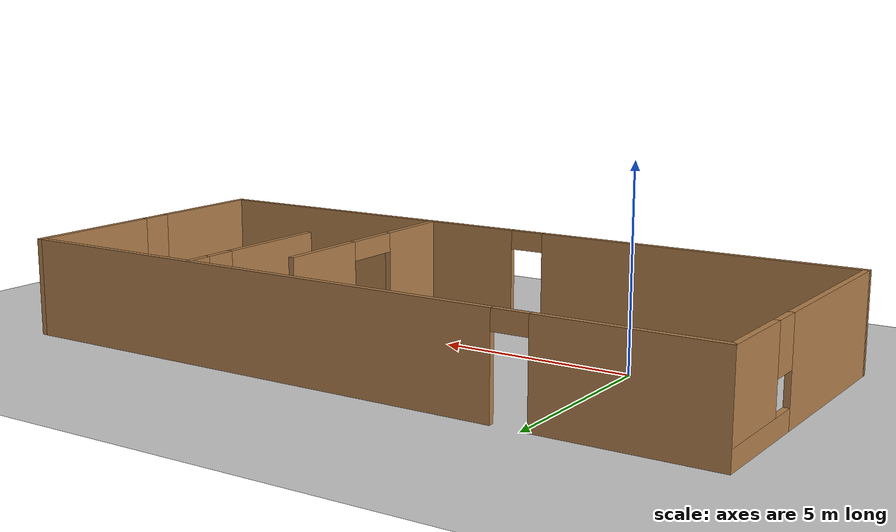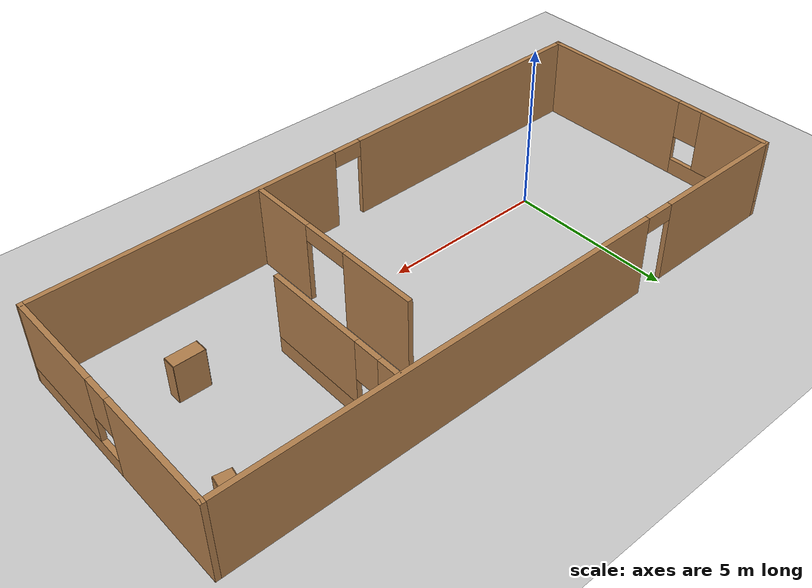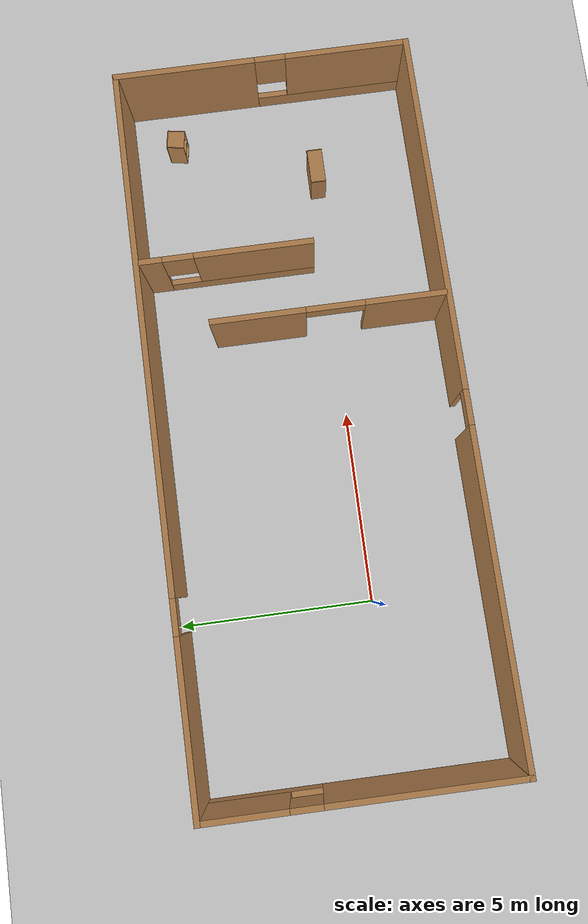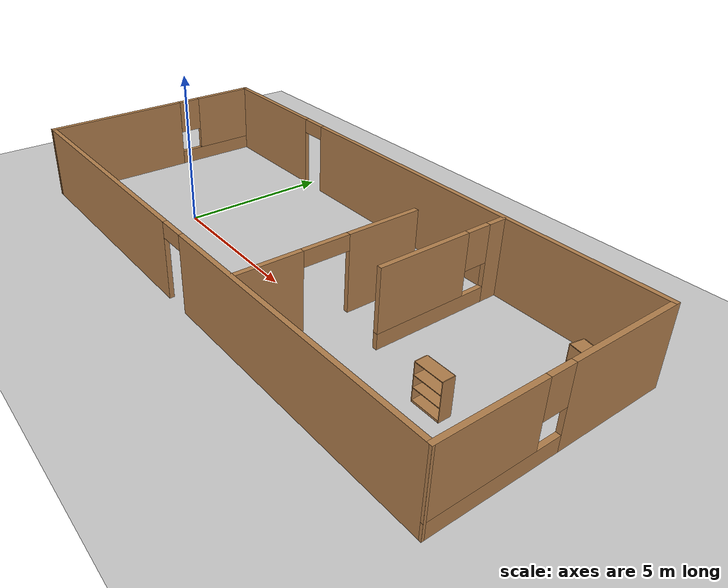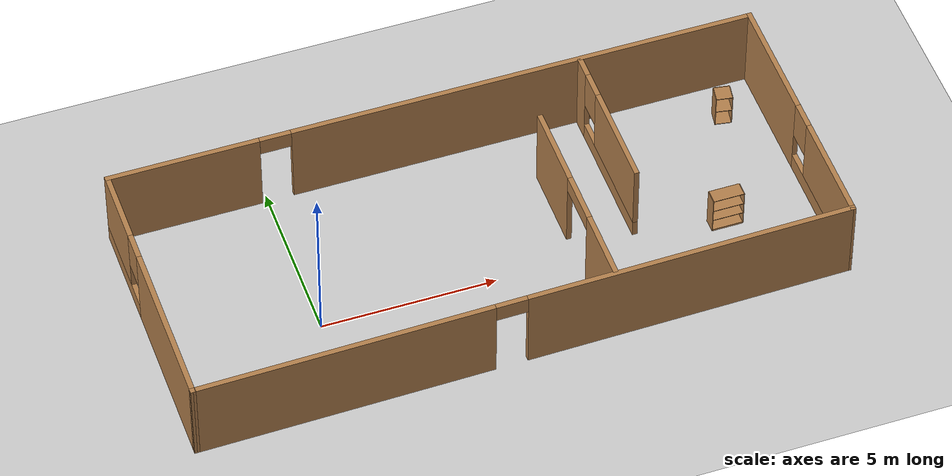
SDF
<sdf version="1.7">
 <world name="default">
  <model name="ground_plane">
   <static>1</static>
   <link name="link">
    <collision name="collision">
     <geometry><plane><normal>0 0 1</normal><size>100 100</size></plane></geometry>
     <surface><friction><ode><mu>100</mu><mu2>50</mu2></ode></friction></surface>
    </collision>
    <visual name="visual">
     <cast_shadows>0</cast_shadows>
     <geometry><plane><normal>0 0 1</normal><size>100 100</size></plane></geometry>
     <material>
      <script><uri>file://media/materials/scripts/gazebo.material</uri><name>Gazebo/Grey</name></script>
     </material>
    </visual>
   </link>
  </model>
  <model name="test">
   <pose>4.86771 0.932351 0 0 -0 0</pose>
   <link name="Wall_1">
    <pose>-9.3 0.0005 0 0 -0 1.5708</pose>
    <visual name="Wall_1_Visual_0">
     <pose>-1.51993 0 1.25 0 -0 0</pose>
     <geometry><box><size>4.96014 0.15 2.5</size></box></geometry>
     <material>
      <script><uri>file://media/materials/scripts/gazebo.material</uri><name>Gazebo/Wood</name></script>
      <ambient>1 1 1 1</ambient>
     </material>
     <meta><layer>0</layer></meta>
    </visual>
    <collision name="Wall_1_Collision_0">
     <geometry><box><size>4.96014 0.15 2.5</size></box></geometry>
     <pose>-1.51993 0 1.25 0 -0 0</pose>
    </collision>
    <visual name="Wall_1_Visual_1">
     <pose>2.48007 0 0.25 0 -0 0</pose>
     <geometry><box><size>3.03986 0.15 0.5</size></box></geometry>
     <material>
      <script><uri>file://media/materials/scripts/gazebo.material</uri><name>Gazebo/Wood</name></script>
      <ambient>1 1 1 1</ambient>
     </material>
     <meta><layer>0</layer></meta>
    </visual>
    <collision name="Wall_1_Collision_1">
     <geometry><box><size>3.03986 0.15 0.5</size></box></geometry>
     <pose>2.48007 0 0.25 0 -0 0</pose>
    </collision>
    <visual name="Wall_1_Visual_2">
     <pose>2.88007 0 1.5 0 -0 0</pose>
     <geometry><box><size>2.23986 0.15 2</size></box></geometry>
     <material>
      <script><uri>file://media/materials/scripts/gazebo.material</uri><name>Gazebo/Wood</name></script>
      <ambient>1 1 1 1</ambient>
     </material>
     <meta><layer>0</layer></meta>
    </visual>
    <collision name="Wall_1_Collision_2">
     <geometry><box><size>2.23986 0.15 2</size></box></geometry>
     <pose>2.88007 0 1.5 0 -0 0</pose>
    </collision>
    <visual name="Wall_1_Visual_3">
     <pose>1.36014 0 1.9 0 -0 0</pose>
     <geometry><box><size>0.8 0.15 1.2</size></box></geometry>
     <material>
      <script><uri>file://media/materials/scripts/gazebo.material</uri><name>Gazebo/Wood</name></script>
      <ambient>1 1 1 1</ambient>
     </material>
     <meta><layer>0</layer></meta>
    </visual>
    <collision name="Wall_1_Collision_3">
     <geometry><box><size>0.8 0.15 1.2</size></box></geometry>
     <pose>1.36014 0 1.9 0 -0 0</pose>
    </collision>
   </link>
   <link name="Wall_3">
    <pose>0 3.9255 0 0 -0 0</pose>
    <visual name="Wall_3_Visual_0">
     <pose>-7.19265 0 1.25 0 -0 0</pose>
     <geometry><box><size>4.36471 0.15 2.5</size></box></geometry>
     <material>
      <script><uri>file://media/materials/scripts/gazebo.material</uri><name>Gazebo/Wood</name></script>
      <ambient>1 1 1 1</ambient>
     </material>
     <meta><layer>0</layer></meta>
    </visual>
    <collision name="Wall_3_Collision_0">
     <geometry><box><size>4.36471 0.15 2.5</size></box></geometry>
     <pose>-7.19265 0 1.25 0 -0 0</pose>
    </collision>
    <visual name="Wall_3_Visual_1">
     <pose>2.63235 0 1.25 0 -0 0</pose>
     <geometry><box><size>13.4853 0.15 2.5</size></box></geometry>
     <material>
      <script><uri>file://media/materials/scripts/gazebo.material</uri><name>Gazebo/Wood</name></script>
      <ambient>1 1 1 1</ambient>
     </material>
     <meta><layer>0</layer></meta>
    </visual>
    <collision name="Wall_3_Collision_1">
     <geometry><box><size>13.4853 0.15 2.5</size></box></geometry>
     <pose>2.63235 0 1.25 0 -0 0</pose>
    </collision>
    <visual name="Wall_3_Visual_2">
     <pose>-4.56029 0 2.25 0 -0 0</pose>
     <geometry><box><size>0.9 0.15 0.5</size></box></geometry>
     <material>
      <script><uri>file://media/materials/scripts/gazebo.material</uri><name>Gazebo/Wood</name></script>
      <ambient>1 1 1 1</ambient>
     </material>
     <meta><layer>0</layer></meta>
    </visual>
    <collision name="Wall_3_Collision_2">
     <geometry><box><size>0.9 0.15 0.5</size></box></geometry>
     <pose>-4.56029 0 2.25 0 -0 0</pose>
    </collision>
   </link>
   <link name="Wall_4">
    <pose>9.3 0.1255 0 0 -0 -1.5708</pose>
    <visual name="Wall_4_Visual_0">
     <pose>-2.02357 0 1.25 0 -0 0</pose>
     <geometry><box><size>3.70287 0.15 2.5</size></box></geometry>
     <material>
      <script><uri>file://media/materials/scripts/gazebo.material</uri><name>Gazebo/Wood</name></script>
      <ambient>1 1 1 1</ambient>
     </material>
     <meta><layer>0</layer></meta>
    </visual>
    <collision name="Wall_4_Collision_0">
     <geometry><box><size>3.70287 0.15 2.5</size></box></geometry>
     <pose>-2.02357 0 1.25 0 -0 0</pose>
    </collision>
    <visual name="Wall_4_Visual_1">
     <pose>1.85143 0 0.25 0 -0 0</pose>
     <geometry><box><size>4.04713 0.15 0.5</size></box></geometry>
     <material>
      <script><uri>file://media/materials/scripts/gazebo.material</uri><name>Gazebo/Wood</name></script>
      <ambient>1 1 1 1</ambient>
     </material>
     <meta><layer>0</layer></meta>
    </visual>
    <collision name="Wall_4_Collision_1">
     <geometry><box><size>4.04713 0.15 0.5</size></box></geometry>
     <pose>1.85143 0 0.25 0 -0 0</pose>
    </collision>
    <visual name="Wall_4_Visual_2">
     <pose>2.25143 0 1.5 0 -0 0</pose>
     <geometry><box><size>3.24713 0.15 2</size></box></geometry>
     <material>
      <script><uri>file://media/materials/scripts/gazebo.material</uri><name>Gazebo/Wood</name></script>
      <ambient>1 1 1 1</ambient>
     </material>
     <meta><layer>0</layer></meta>
    </visual>
    <collision name="Wall_4_Collision_2">
     <geometry><box><size>3.24713 0.15 2</size></box></geometry>
     <pose>2.25143 0 1.5 0 -0 0</pose>
    </collision>
    <visual name="Wall_4_Visual_3">
     <pose>0.22787 0 1.9 0 -0 0</pose>
     <geometry><box><size>0.8 0.15 1.2</size></box></geometry>
     <material>
      <script><uri>file://media/materials/scripts/gazebo.material</uri><name>Gazebo/Wood</name></script>
      <ambient>1 1 1 1</ambient>
     </material>
     <meta><layer>0</layer></meta>
    </visual>
    <collision name="Wall_4_Collision_3">
     <geometry><box><size>0.8 0.15 1.2</size></box></geometry>
     <pose>0.22787 0 1.9 0 -0 0</pose>
    </collision>
   </link>
   <link name="Wall_5">
    <pose>0 -3.7995 0 0 -0 -3.12815</pose>
    <visual name="Wall_5_Visual_0">
     <pose>-4.68137 0 1.25 0 -0 0</pose>
     <geometry><box><size>9.38895 0.15 2.5</size></box></geometry>
     <material>
      <script><uri>file://media/materials/scripts/gazebo.material</uri><name>Gazebo/Wood</name></script>
      <ambient>1 1 1 1</ambient>
     </material>
     <meta><layer>0</layer></meta>
    </visual>
    <collision name="Wall_5_Collision_0">
     <geometry><box><size>9.38895 0.15 2.5</size></box></geometry>
     <pose>-4.68137 0 1.25 0 -0 0</pose>
    </collision>
    <visual name="Wall_5_Visual_1">
     <pose>5.14447 0 1.25 0 -0 0</pose>
     <geometry><box><size>8.46273 0.15 2.5</size></box></geometry>
     <material>
      <script><uri>file://media/materials/scripts/gazebo.material</uri><name>Gazebo/Wood</name></script>
      <ambient>1 1 1 1</ambient>
     </material>
     <meta><layer>0</layer></meta>
    </visual>
    <collision name="Wall_5_Collision_1">
     <geometry><box><size>8.46273 0.15 2.5</size></box></geometry>
     <pose>5.14447 0 1.25 0 -0 0</pose>
    </collision>
    <visual name="Wall_5_Visual_2">
     <pose>0.46311 0 2.25 0 -0 0</pose>
     <geometry><box><size>0.9 0.15 0.5</size></box></geometry>
     <material>
      <script><uri>file://media/materials/scripts/gazebo.material</uri><name>Gazebo/Wood</name></script>
      <ambient>1 1 1 1</ambient>
     </material>
     <meta><layer>0</layer></meta>
    </visual>
    <collision name="Wall_5_Collision_2">
     <geometry><box><size>0.9 0.15 0.5</size></box></geometry>
     <pose>0.46311 0 2.25 0 -0 0</pose>
    </collision>
   </link>
   <static>1</static>
  </model>
  <model name="bookshelf_clone">
   <static>1</static>
   <link name="link">
    <inertial><mass>1</mass></inertial>
    <collision name="back">
     <pose>0 0.005 0.6 0 -0 0</pose>
     <geometry><box><size>0.9 0.01 1.2</size></box></geometry>
    </collision>
    <visual name="visual1">
     <pose>0 0.005 0.6 0 -0 0</pose>
     <geometry><box><size>0.9 0.01 1.2</size></box></geometry>
     <material>
      <script><uri>file://media/materials/scripts/gazebo.material</uri><name>Gazebo/Wood</name></script>
     </material>
    </visual>
    <collision name="left_side">
     <pose>0.45 -0.195 0.6 0 -0 0</pose>
     <geometry><box><size>0.02 0.4 1.2</size></box></geometry>
    </collision>
    <visual name="visual2">
     <pose>0.45 -0.195 0.6 0 -0 0</pose>
     <geometry><box><size>0.02 0.4 1.2</size></box></geometry>
     <material>
      <script><uri>file://media/materials/scripts/gazebo.material</uri><name>Gazebo/Wood</name></script>
     </material>
    </visual>
    <collision name="right_side">
     <pose>-0.45 -0.195 0.6 0 -0 0</pose>
     <geometry><box><size>0.02 0.4 1.2</size></box></geometry>
    </collision>
    <visual name="visual3">
     <pose>-0.45 -0.195 0.6 0 -0 0</pose>
     <geometry><box><size>0.02 0.4 1.2</size></box></geometry>
     <material>
      <script><uri>file://media/materials/scripts/gazebo.material</uri><name>Gazebo/Wood</name></script>
     </material>
    </visual>
    <collision name="bottom">
     <pose>0 -0.195 0.03 0 -0 0</pose>
     <geometry><box><size>0.88 0.4 0.06</size></box></geometry>
    </collision>
    <visual name="visual4">
     <pose>0 -0.195 0.03 0 -0 0</pose>
     <geometry><box><size>0.88 0.4 0.06</size></box></geometry>
     <material>
      <script><uri>file://media/materials/scripts/gazebo.material</uri><name>Gazebo/Wood</name></script>
     </material>
    </visual>
    <collision name="top">
     <pose>0 -0.195 1.19 0 -0 0</pose>
     <geometry><box><size>0.88 0.4 0.02</size></box></geometry>
    </collision>
    <visual name="visual5">
     <pose>0 -0.195 1.19 0 -0 0</pose>
     <geometry><box><size>0.88 0.4 0.02</size></box></geometry>
     <material>
      <script><uri>file://media/materials/scripts/gazebo.material</uri><name>Gazebo/Wood</name></script>
     </material>
    </visual>
    <collision name="low_shelf">
     <pose>0 -0.195 0.43 0 -0 0</pose>
     <geometry><box><size>0.88 0.4 0.02</size></box></geometry>
    </collision>
    <visual name="visual6">
     <pose>0 -0.195 0.43 0 -0 0</pose>
     <geometry><box><size>0.88 0.4 0.02</size></box></geometry>
     <material>
      <script><uri>file://media/materials/scripts/gazebo.material</uri><name>Gazebo/Wood</name></script>
     </material>
    </visual>
    <collision name="high_shelf">
     <pose>0 -0.195 0.8 0 -0 0</pose>
     <geometry><box><size>0.88 0.4 0.02</size></box></geometry>
    </collision>
    <visual name="visual7">
     <pose>0 -0.195 0.8 0 -0 0</pose>
     <geometry><box><size>0.88 0.4 0.02</size></box></geometry>
     <material>
      <script><uri>file://media/materials/scripts/gazebo.material</uri><name>Gazebo/Wood</name></script>
     </material>
    </visual>
   </link>
   <pose>11.6288 0.13597 0 0 -0 0</pose>
  </model>
  <model name="cabinet_clone_clone">
   <static>1</static>
   <link name="cabinet_bottom_plate">
    <inertial>
     <pose>0 0 -1 0 -0 0</pose>
     <inertia><ixx>2.05</ixx><ixy>0</ixy><ixz>0</ixz><iyy>2.05</iyy><iyz>0</iyz><izz>2.05</izz></inertia>
     <mass>25</mass>
    </inertial>
    <collision name="cabinet_bottom_plate_geom">
     <pose>0 0 0.01 0 -0 0</pose>
     <geometry><box><size>0.45 0.45 0.02</size></box></geometry>
    </collision>
    <visual name="cabinet_bottom_plate_geom_visual">
     <pose>0 0 0.01 0 -0 0</pose>
     <geometry><box><size>0.45 0.45 0.02</size></box></geometry>
     <material>
      <script><uri>file://media/materials/scripts/gazebo.material</uri><name>Gazebo/Wood</name></script>
     </material>
    </visual>
    <collision name="cabinet_bottom_plate_geom_cabinet_back_plate">
     <pose>0.235 0 0.51 0 -0 0</pose>
     <geometry><box><size>0.02 0.45 1.02</size></box></geometry>
    </collision>
    <visual name="cabinet_bottom_plate_geom_cabinet_back_plate_visual">
     <pose>0.235 0 0.51 0 -0 0</pose>
     <geometry><box><size>0.02 0.45 1.02</size></box></geometry>
     <material>
      <script><uri>file://media/materials/scripts/gazebo.material</uri><name>Gazebo/Wood</name></script>
     </material>
    </visual>
    <collision name="cabinet_bottom_plate_geom_cabinet_left_plate">
     <pose>0 0.235 0.51 0 -0 0</pose>
     <geometry><box><size>0.45 0.02 1.02</size></box></geometry>
    </collision>
    <visual name="cabinet_bottom_plate_geom_cabinet_left_plate_visual">
     <pose>0 0.235 0.51 0 -0 0</pose>
     <geometry><box><size>0.45 0.02 1.02</size></box></geometry>
     <material>
      <script><uri>file://media/materials/scripts/gazebo.material</uri><name>Gazebo/Wood</name></script>
     </material>
    </visual>
    <collision name="cabinet_bottom_plate_geom_cabinet_middle_plate">
     <pose>0 0 0.51 0 -0 0</pose>
     <geometry><box><size>0.45 0.45 0.02</size></box></geometry>
    </collision>
    <visual name="cabinet_bottom_plate_geom_cabinet_middle_plate_visual">
     <pose>0 0 0.51 0 -0 0</pose>
     <geometry><box><size>0.45 0.45 0.02</size></box></geometry>
     <material>
      <script><uri>file://media/materials/scripts/gazebo.material</uri><name>Gazebo/Wood</name></script>
     </material>
    </visual>
    <collision name="cabinet_bottom_plate_geom_cabinet_right_plate">
     <pose>0 -0.235 0.51 0 -0 0</pose>
     <geometry><box><size>0.45 0.02 1.02</size></box></geometry>
    </collision>
    <visual name="cabinet_bottom_plate_geom_cabinet_right_plate_visual">
     <pose>0 -0.235 0.51 0 -0 0</pose>
     <geometry><box><size>0.45 0.02 1.02</size></box></geometry>
     <material>
      <script><uri>file://media/materials/scripts/gazebo.material</uri><name>Gazebo/Wood</name></script>
     </material>
    </visual>
    <collision name="cabinet_bottom_plate_geom_cabinet_top_plate">
     <pose>0 0 1.01 0 -0 0</pose>
     <geometry><box><size>0.45 0.45 0.02</size></box></geometry>
    </collision>
    <visual name="cabinet_bottom_plate_geom_cabinet_top_plate_visual">
     <pose>0 0 1.01 0 -0 0</pose>
     <geometry><box><size>0.45 0.45 0.02</size></box></geometry>
     <material>
      <script><uri>file://media/materials/scripts/gazebo.material</uri><name>Gazebo/Wood</name></script>
     </material>
    </visual>
   </link>
   <pose>12.9472 3.60456 0 0 -0 1.40258</pose>
  </model>
  <model name="Untitled">
   <pose>4.6025 1.02 0 0 -0 0</pose>
   <link name="Wall_0">
    <pose>2.7675 -0.815 0 0 -0 1.5708</pose>
    <visual name="Wall_0_Visual_0">
     <pose>-1.9675 0 1.25 0 -0 0</pose>
     <geometry><box><size>2.065 0.15 2.5</size></box></geometry>
     <material>
      <script><uri>file://media/materials/scripts/gazebo.material</uri><name>Gazebo/Wood</name></script>
      <ambient>1 1 1 1</ambient>
     </material>
     <meta><layer>0</layer></meta>
    </visual>
    <collision name="Wall_0_Collision_0">
     <geometry><box><size>2.065 0.15 2.5</size></box></geometry>
     <pose>-1.9675 0 1.25 0 -0 0</pose>
    </collision>
    <visual name="Wall_0_Visual_1">
     <pose>1.7825 0 1.25 0 -0 0</pose>
     <geometry><box><size>2.435 0.15 2.5</size></box></geometry>
     <material>
      <script><uri>file://media/materials/scripts/gazebo.material</uri><name>Gazebo/Wood</name></script>
      <ambient>1 1 1 1</ambient>
     </material>
     <meta><layer>0</layer></meta>
    </visual>
    <collision name="Wall_0_Collision_1">
     <geometry><box><size>2.435 0.15 2.5</size></box></geometry>
     <pose>1.7825 0 1.25 0 -0 0</pose>
    </collision>
    <visual name="Wall_0_Visual_2">
     <pose>-0.185 0 2.25 0 -0 0</pose>
     <geometry><box><size>1.5 0.15 0.5</size></box></geometry>
     <material>
      <script><uri>file://media/materials/scripts/gazebo.material</uri><name>Gazebo/Wood</name></script>
      <ambient>1 1 1 1</ambient>
     </material>
     <meta><layer>0</layer></meta>
    </visual>
    <collision name="Wall_0_Collision_2">
     <geometry><box><size>1.5 0.15 0.5</size></box></geometry>
     <pose>-0.185 0 2.25 0 -0 0</pose>
    </collision>
   </link>
   <link name="Wall_2">
    <pose>4.5275 1.565 0 0 -0 -1.5708</pose>
    <visual name="Wall_2_Visual_0">
     <pose>-1.93013 0 1.25 0 -0 0</pose>
     <geometry><box><size>0.63975 0.15 2.5</size></box></geometry>
     <material>
      <script><uri>file://media/materials/scripts/gazebo.material</uri><name>Gazebo/Wood</name></script>
      <ambient>1 1 1 1</ambient>
     </material>
     <meta><layer>0</layer></meta>
    </visual>
    <collision name="Wall_2_Collision_0">
     <geometry><box><size>0.63975 0.15 2.5</size></box></geometry>
     <pose>-1.93013 0 1.25 0 -0 0</pose>
    </collision>
    <visual name="Wall_2_Visual_1">
     <pose>0.319875 0 0.25 0 -0 0</pose>
     <geometry><box><size>3.86025 0.15 0.5</size></box></geometry>
     <material>
      <script><uri>file://media/materials/scripts/gazebo.material</uri><name>Gazebo/Wood</name></script>
      <ambient>1 1 1 1</ambient>
     </material>
     <meta><layer>0</layer></meta>
    </visual>
    <collision name="Wall_2_Collision_1">
     <geometry><box><size>3.86025 0.15 0.5</size></box></geometry>
     <pose>0.319875 0 0.25 0 -0 0</pose>
    </collision>
    <visual name="Wall_2_Visual_2">
     <pose>0.719875 0 1.5 0 -0 0</pose>
     <geometry><box><size>3.06025 0.15 2</size></box></geometry>
     <material>
      <script><uri>file://media/materials/scripts/gazebo.material</uri><name>Gazebo/Wood</name></script>
      <ambient>1 1 1 1</ambient>
     </material>
     <meta><layer>0</layer></meta>
    </visual>
    <collision name="Wall_2_Collision_2">
     <geometry><box><size>3.06025 0.15 2</size></box></geometry>
     <pose>0.719875 0 1.5 0 -0 0</pose>
    </collision>
    <visual name="Wall_2_Visual_3">
     <pose>-1.21025 0 1.9 0 -0 0</pose>
     <geometry><box><size>0.8 0.15 1.2</size></box></geometry>
     <material>
      <script><uri>file://media/materials/scripts/gazebo.material</uri><name>Gazebo/Wood</name></script>
      <ambient>1 1 1 1</ambient>
     </material>
     <meta><layer>0</layer></meta>
    </visual>
    <collision name="Wall_2_Collision_3">
     <geometry><box><size>0.8 0.15 1.2</size></box></geometry>
     <pose>-1.21025 0 1.9 0 -0 0</pose>
    </collision>
   </link>
   <static>1</static>
  </model>
 </world>
</sdf>
